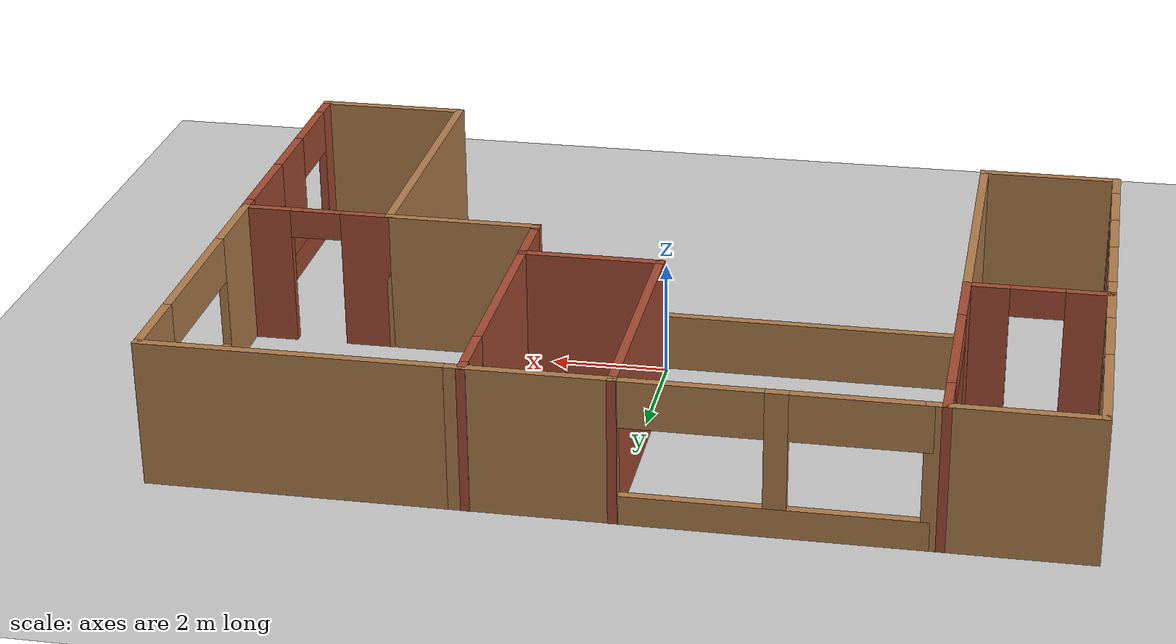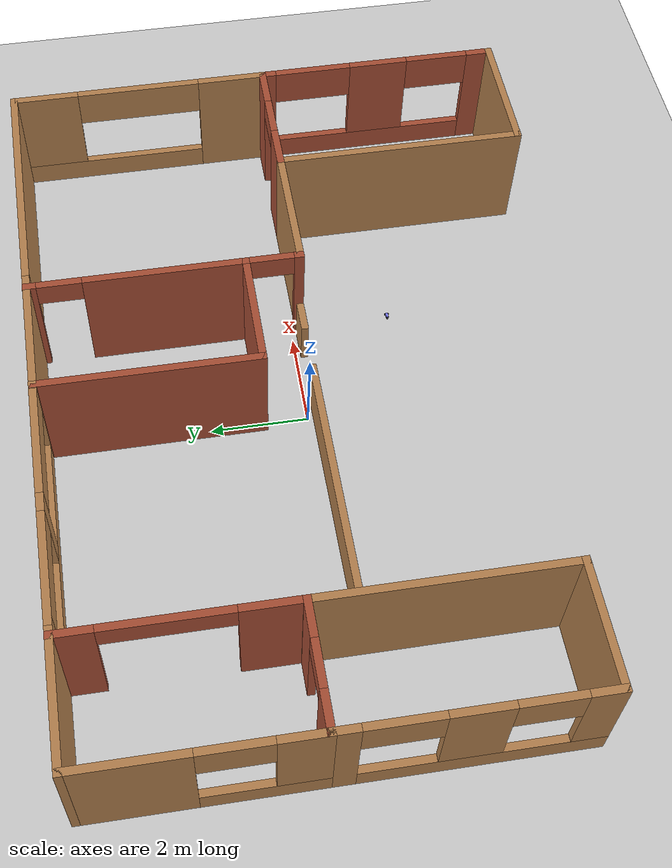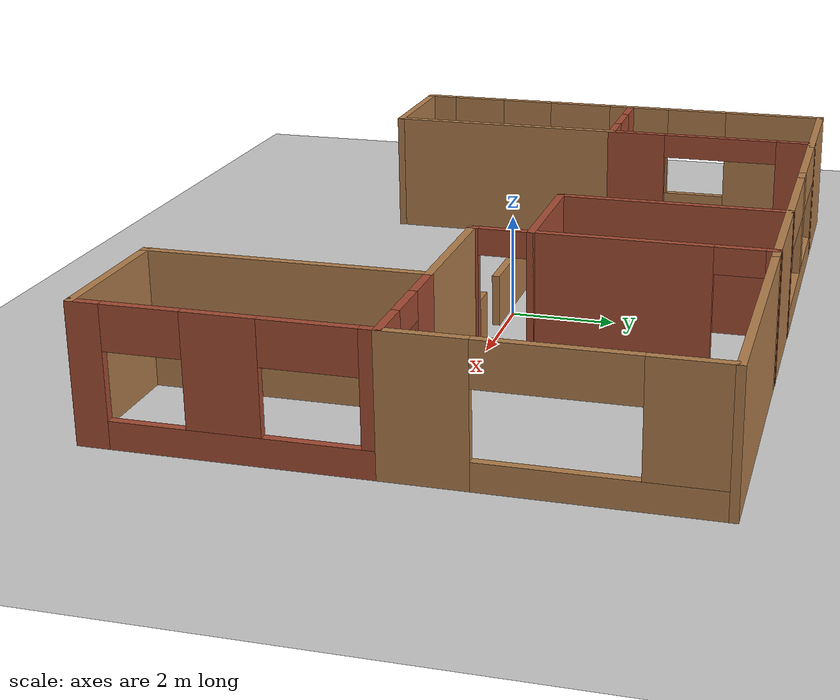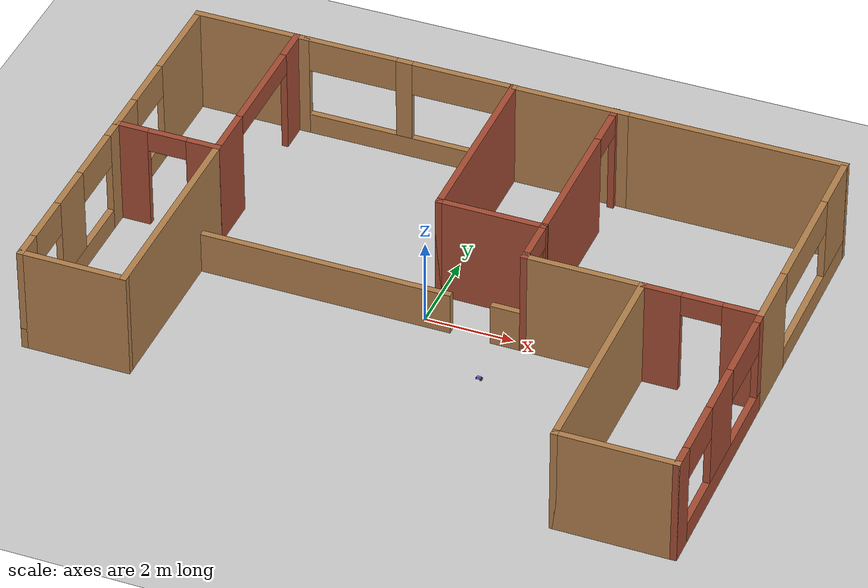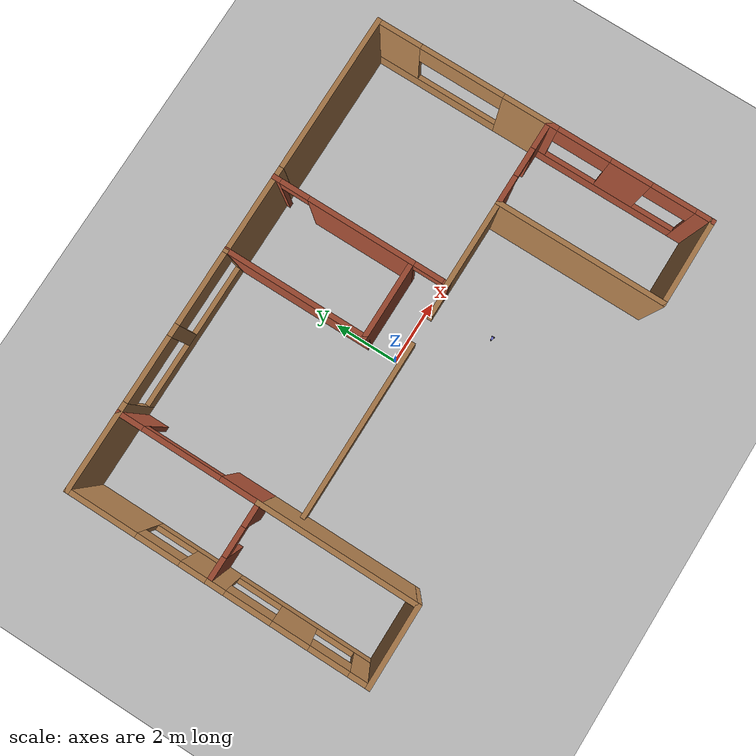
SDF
<?xml version="1.0"?>
<sdf version="1.6">
    <world name="house_diff_drive">
        <scene>
            <ambient>1.0 1.0 1.0</ambient>
            <background>0.8 0.8 0.8</background>
        </scene>

        <plugin
            filename="gz-sim-physics-system"
            name="gz::sim::systems::Physics"></plugin>
        <plugin
            filename="gz-sim-user-commands-system"
            name="gz::sim::systems::UserCommands"></plugin>
        <plugin
            filename="gz-sim-scene-broadcaster-system"
            name="gz::sim::systems::SceneBroadcaster"></plugin>
        <plugin
            filename="libgz-sim-sensors-system.so"
            name="gz::sim::systems::Sensors">
            <render_engine>ogre2</render_engine>
        </plugin>
        <plugin filename="libignition-gazebo-imu-system.so"
            name="ignition::gazebo::systems::Imu"></plugin>

        <light type="directional" name="sun">
            <cast_shadows>true</cast_shadows>
            <pose>0 0 10 0 0 0</pose>
            <diffuse>0.8 0.8 0.8 1</diffuse>
            <specular>0.2 0.2 0.2 1</specular>
            <attenuation>
                <range>1000</range>
                <constant>0.9</constant>
                <linear>0.01</linear>
                <quadratic>0.001</quadratic>
            </attenuation>
            <direction>-0.5 0.1 -0.9</direction>
        </light>

        <model name="ground_plane">
            <static>true</static>
            <link name="link">
                <collision name="collision">
                    <geometry>
                        <plane>
                            <normal>0.0 0.0 1</normal>
                        </plane>
                    </geometry>
                </collision>
                <visual name="visual">
                    <geometry>
                        <plane>
                            <normal>0.0 0.0 1</normal>
                            <size>100 100</size>
                        </plane>
                    </geometry>
                    <material>
                        <ambient>0.8 0.8 0.8 1</ambient>
                        <diffuse>0.8 0.8 0.8 1</diffuse>
                        <specular>0.8 0.8 0.8 1</specular>
                    </material>
                </visual>
            </link>
        </model>

        <model name="turtlebot3_house">
            <static>1</static>
            <include>
                <uri>model://turtlebot3_house</uri>
            </include>
        </model>

        <include>
            <name>vehicle_blue</name>
            <pose>2 -2 0.5 0 0 0</pose>
            <uri>model://vehicle</uri>
        </include>

    </world>
</sdf>
